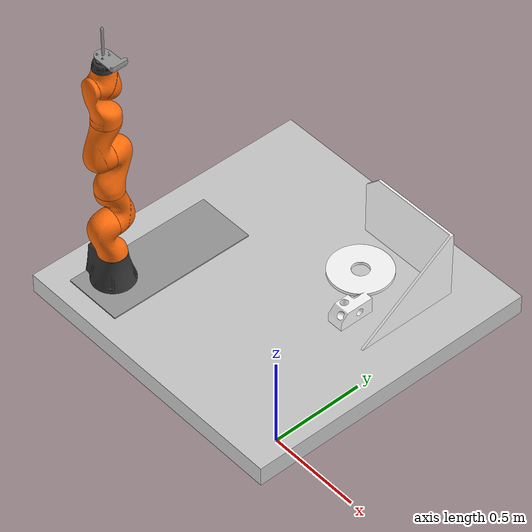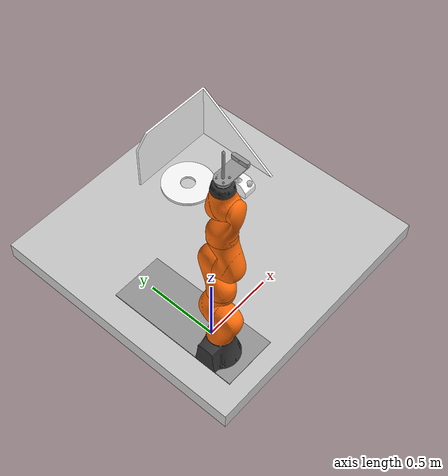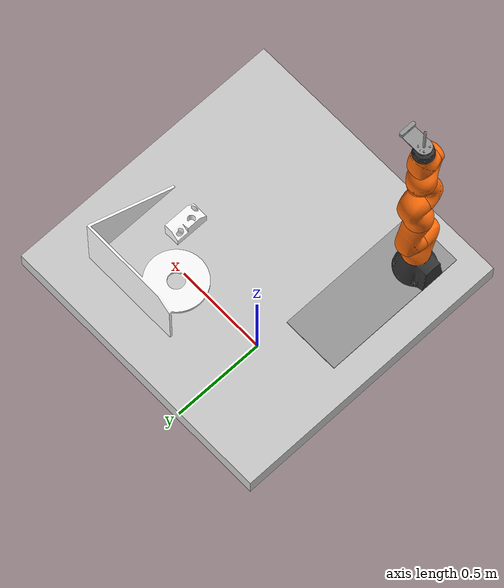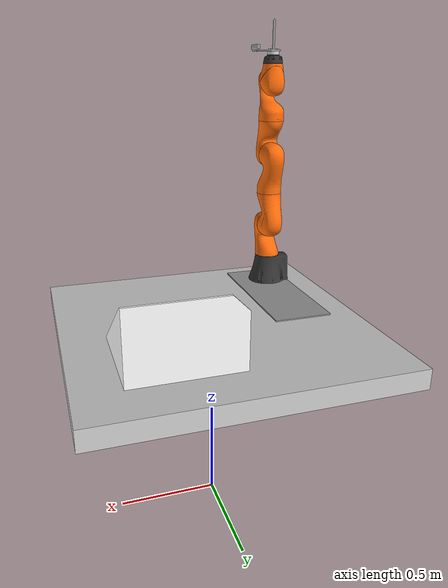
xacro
<?xml version="1.0"?>
<robot name="workcell" xmlns:xacro="http://www.ros.org/wiki/xacro">
  <xacro:include filename="$(find iiwa_description)/urdf/materials.xacro" />
  <xacro:include filename="$(find iiwa_description)/urdf/iiwa7.xacro"/>

  <xacro:arg name="table_size" default="1.5"/>
  <xacro:arg name="hardware_interface" default="PositionJointInterface"/>
  <xacro:arg name="robot_name" default="iiwa"/>

  <xacro:property name="INCH_TO_METER" value="0.0254"/><!--meters/inches-->
  <xacro:property name="pointer_length" value="7.50"/><!--inches-->

  <xacro:property name="IIWA_MF_DIAMETER" value ="0.063"/>
  <xacro:property name="IIWA_MF_LENGTH" value ="0.061"/>

  <xacro:property name="TOOL_FACE_LENGTH" value="0.10668"/>
  <xacro:property name="TOOL_FACE_THICKNESS" value="0.00635"/>
  <xacro:property name="TOOL_FACE_MOUNT_LOC_Z" value="0.1016"/>

  <xacro:property name="BASE_PLATE_THICKNESS" value="0.00635"/>
  <xacro:property name="BASE_PLATE_LENGTH" value="0.762"/>
  <xacro:property name="BASE_PLATE_WIDTH" value="0.3048"/>

  <xacro:property name="CAMERA_WIDTH" value="0.02005"/>

  <!-- ====================== LINKS ========================= -->
  <link name="world"/>

  <!-- table -->
  <link name="table">
    <visual>
      <origin xyz="0 0 -0.05"/>
      <geometry>
        <box size="$(arg table_size) $(arg table_size) 0.1"/>
      </geometry>
      <material name="StainlessSteel">
        <color rgba="0.8 0.8 0.8 0.9"/>
      </material>
    </visual>
    <collision>
      <origin xyz="0 0 -0.05"/>
      <geometry>
        <box size="$(arg table_size) $(arg table_size) 0.1"/>
      </geometry>
    </collision>
  </link>

  <link name="base_plate">
    <visual>
      <origin xyz="${0.5 * BASE_PLATE_WIDTH} ${0.5 * BASE_PLATE_LENGTH} ${BASE_PLATE_THICKNESS}"/>
      <geometry>
        <box size="${BASE_PLATE_WIDTH} ${BASE_PLATE_LENGTH} ${BASE_PLATE_THICKNESS}"/>
      </geometry>
      <material name="StainlessSteel">
        <color rgba="0.6 0.6 0.6 1.0"/>
      </material>
    </visual>
    <collision>
      <origin xyz="${0.5 * BASE_PLATE_WIDTH} ${0.5 * BASE_PLATE_LENGTH} ${BASE_PLATE_THICKNESS}"/>
      <geometry>
        <box size="${BASE_PLATE_WIDTH} ${BASE_PLATE_LENGTH} ${BASE_PLATE_THICKNESS}"/>
      </geometry>
      <material name="StainlessSteel">
        <color rgba="0.6 0.6 0.6 1.0"/>
      </material>
    </collision>
  </link>

  <!-- teach box -->
  <link name="teach_box">
    <visual>
      <origin xyz="0 0 -0.17"/>
      <geometry>
       <mesh filename="package://vpr_support/meshes/teachbox.STL"/>
      </geometry>
      <material name="white">
        <color rgba="1 1 1 1"/>
      </material>
    </visual>
  </link>

  <link name="iiwa_mounting_flange">
    <visual>
      <origin xyz="0 0 ${0.5*IIWA_MF_LENGTH}"/>
      <geometry>
       <cylinder radius="${0.5 * IIWA_MF_DIAMETER}" length="${IIWA_MF_LENGTH}"/>
      </geometry>
      <material name="light_gray">
        <color rgba="0.8 0.8 0.8 1.0"/>
      </material>
    </visual>

    <collision>
      <origin xyz="0 0 ${0.5*IIWA_MF_LENGTH}"/>
      <geometry>
       <cylinder radius="${0.5 * IIWA_MF_DIAMETER}" length="${IIWA_MF_LENGTH}"/>
      </geometry>
      <material name="light_gray">
        <color rgba="0.8 0.8 0.8 1.0"/>
      </material>
    </collision>
  </link>

  <link name="eef_toolface">
    <visual>
      <geometry>
        <mesh filename="package://vpr_support/meshes/TEACH_EEF.STL"/>
      </geometry>
      <material name="grey"/>
    </visual>
    <collision>
      <geometry>
        <mesh filename="package://vpr_support/meshes/TEACH_EEF.STL"/>
      </geometry>
    </collision>
  </link>
  <link name="eef_toolface_mount_location"/>

  <link name="tcp"/>
  <link name="camera_base_link"/>

  <!-- ====================== JOINTS ========================= -->
  <joint name="world_to_table_joint" type="fixed">
    <origin xyz="0 0 1.0"/>
    <parent link="world"/>
    <child link="table"/>
  </joint>

  <joint name="table_to_teach_box" type="floating">
    <parent link="table"/>
    <child link="teach_box"/>
  </joint>

  <joint name="table_to_base_plate" type="fixed">
    <origin xyz="${-0.5*$(arg table_size) + 0.1397 } ${-0.5*$(arg table_size) + 0.09525} 0.0" rpy="0 0 0"/>
     <parent link="table"/>
     <child link="base_plate"/>
  </joint>

  <joint name="iiwa_to_mounting_flange" type="fixed">
    <origin xyz="0.0 0.0 0.0"/>
    <parent link="iiwa_link_7"/>
    <child link="iiwa_mounting_flange"/>
  </joint>

  <joint name="$(arg robot_name)_to_eef_toolface" type="fixed">
    <origin xyz="0.0 0.0 ${IIWA_MF_LENGTH}" rpy="0.0 0.0 ${0.5 * pi}"/>
    <parent link="iiwa_mounting_flange"/>
    <child link="eef_toolface"/>
  </joint>
  <joint name="$(arg robot_name)_to_eef_mount_location" type="fixed">
    <origin xyz="0.035 -0.08 -0.01" rpy="0.0 0.0 0.0"/>
    <parent link="eef_toolface"/>
    <child link="eef_toolface_mount_location"/>
  </joint>

  <joint name="$(arg robot_name)_to_camera_base" type="fixed">
    <origin xyz="0.0 0.0 ${0.5 * CAMERA_WIDTH}" rpy="0.0 0.0 0.0"/>
    <parent link="eef_toolface_mount_location"/>
    <child link="camera_base_link"/>
  </joint>

  <joint name="eef_toolface_to_tcp" type="fixed">
    <origin xyz="0.0 0.0 ${pointer_length * INCH_TO_METER}"/>
    <parent link="eef_toolface"/>
    <child link="tcp"/>
  </joint>

  <!--iiwa-->
  <xacro:iiwa7 hardware_interface="$(arg hardware_interface)"
               robot_name="$(arg robot_name)"
               parent="table">
    <origin xyz="-0.5 -0.5 ${BASE_PLATE_THICKNESS}" rpy="0 0 0"/>
  </xacro:iiwa7>

</robot>

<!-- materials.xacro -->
<robot>

  <material name="Black">
    <color rgba="0.0 0.0 0.0 1.0"/>
  </material>

  <material name="Blue">
    <color rgba="0.0 0.0 0.8 1.0"/>
  </material>

  <material name="Green">
    <color rgba="0.0 0.8 0.0 1.0"/>
  </material>

  <material name="Grey">
    <color rgba="0.2 0.2 0.2 1.0"/>
  </material>

  <material name="Orange">
    <color rgba="${255/255} ${108/255} ${10/255} 1.0"/>
  </material>

  <material name="Brown">
    <color rgba="${222/255} ${207/255} ${195/255} 1.0"/>
  </material>

  <material name="Red">
    <color rgba="0.8 0.0 0.0 1.0"/>
  </material>

  <material name="White">
    <color rgba="1.0 1.0 1.0 1.0"/>
  </material>

</robot>

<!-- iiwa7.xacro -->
<robot xmlns:xacro="http://www.ros.org/wiki/xacro">

  <!-- Import all Gazebo-customization elements, including Gazebo colors -->
  <xacro:include filename="$(find iiwa_description)/urdf/iiwa.gazebo.xacro" />
  <!-- Import Transmissions -->
  <xacro:include filename="$(find iiwa_description)/urdf/iiwa.transmission.xacro" />
  <!-- Include Utilities -->
  <xacro:include filename="$(find iiwa_description)/urdf/utilities.xacro" />

  <!-- some constants -->
  <xacro:property name="safety_controller_k_pos" value="100" />
  <xacro:property name="safety_controller_k_vel" value="2" />
  <xacro:property name="joint_damping" value="0.5" />
  <xacro:property name="max_effort" value="300"/>
  <xacro:property name="max_velocity" value="10"/>

  <xacro:macro name="iiwa7" params="parent hardware_interface robot_name *origin">

    <!--joint between {parent} and link_0-->
    <joint name="${parent}_${robot_name}_joint" type="fixed">
      <xacro:insert_block name="origin"/>
      <parent link="${parent}"/>
      <child link="${robot_name}_link_0"/>
    </joint>

    <link name="${robot_name}_link_0">
      <inertial>
        <origin xyz="-0.1 0 0.07" rpy="0 0 0"/>
        <mass value="5"/>
        <inertia ixx="0.05"  ixy="0"  ixz="0" iyy="0.06" iyz="0" izz="0.03" />
      </inertial>

      <visual>
        <origin xyz="0 0 0" rpy="0 0 0"/>
        <geometry>
          <mesh filename="package://iiwa_description/meshes/iiwa7/visual/link_0.stl"/>
        </geometry>
        <material name="Grey"/>
      </visual>

      <collision>
        <origin xyz="0 0 0" rpy="0 0 0"/>
        <geometry>
          <mesh filename="package://iiwa_description/meshes/iiwa7/collision/link_0.stl"/>
        </geometry>
      </collision>

    </link>

    <!-- joint between link_0 and link_1 -->
    <joint name="${robot_name}_joint_1" type="revolute">
      <parent link="${robot_name}_link_0"/>
      <child link="${robot_name}_link_1"/>
      <origin xyz="0 0 0.15" rpy="0 0 0"/>
      <axis xyz="0 0 1"/>
      <limit lower="${-170 * PI / 180}" upper="${170 * PI / 180}"
             effort="${max_effort}" velocity="${max_velocity}" />
      <safety_controller soft_lower_limit="${-168 * PI / 180}"
                         soft_upper_limit="${168 * PI / 180}"
                         k_position="${safety_controller_k_pos}"
                         k_velocity="${safety_controller_k_vel}"/>
      <dynamics damping="${joint_damping}"/>
    </joint>

    <link name="${robot_name}_link_1">
      <inertial>
        <origin xyz="0 -0.03 0.12" rpy="0 0 0"/>
        <mass value="3.4525"/>
        <inertia ixx="0.02183"  ixy="0"  ixz="0" iyy="0.007703" iyz="-0.003887" izz="0.02083" />
      </inertial>
      <visual>
        <origin xyz="0 0 0.0075" rpy="0 0 0"/>
        <geometry>
          <mesh filename="package://iiwa_description/meshes/iiwa7/visual/link_1.stl"/>
        </geometry>
        <material name="Orange"/>
      </visual>
      <collision>
        <origin xyz="0 0 0.0075" rpy="0 0 0"/>
        <geometry>
          <mesh filename="package://iiwa_description/meshes/iiwa7/collision/link_1.stl"/>
        </geometry>
      </collision>
    </link>

    <joint name="${robot_name}_joint_2" type="revolute">
      <parent link="${robot_name}_link_1"/>
      <child link="${robot_name}_link_2"/>
      <origin xyz="0 0 0.19" rpy="${PI / 2}   0 ${PI}"/>
      <axis xyz="0 0 1"/>
      <limit lower="${-120 * PI / 180}" upper="${120 * PI / 180}"
             effort="${max_effort}" velocity="${max_velocity}" />
      <safety_controller soft_lower_limit="${-118 * PI / 180}"
                         soft_upper_limit="${118 * PI / 180}"
                         k_position="${safety_controller_k_pos}"
                         k_velocity="${safety_controller_k_vel}"/>
      <dynamics damping="${joint_damping}"/>
    </joint>

    <link name="${robot_name}_link_2">
      <inertial>
        <origin xyz="0.0003 0.059 0.042" rpy="0 0 0"/>
        <mass value="3.4821"/>
        <inertia ixx="0.02076"  ixy="0"  ixz="-0.003626" iyy="0.02179" iyz="0" izz="0.00779" />
      </inertial>
      <visual>
        <origin xyz="0 0 0" rpy="0 0 0"/>
        <geometry>
          <mesh filename="package://iiwa_description/meshes/iiwa7/visual/link_2.stl"/>
        </geometry>
        <material name="Orange"/>
      </visual>

      <collision>
        <origin xyz="0 0 0" rpy="0 0 0"/>
        <geometry>
          <mesh filename="package://iiwa_description/meshes/iiwa7/collision/link_2.stl"/>
        </geometry>
      </collision>
    </link>

    <joint name="${robot_name}_joint_3" type="revolute">
      <parent link="${robot_name}_link_2"/>
      <child link="${robot_name}_link_3"/>
      <origin xyz="0 0.21 0" rpy="${PI / 2} 0 ${PI}"/>
      <axis xyz="0 0 1"/>
      <limit lower="${-170 * PI / 180}" upper="${170 * PI / 180}"
             effort="${max_effort}" velocity="${max_velocity}" />
      <safety_controller soft_lower_limit="${-168 * PI / 180}"
                         soft_upper_limit="${168 * PI / 180}"
                         k_position="${safety_controller_k_pos}"
                         k_velocity="${safety_controller_k_vel}"/>
      <dynamics damping="${joint_damping}"/>
    </joint>

    <link name="${robot_name}_link_3">
      <inertial>
        <origin xyz="0 0.03 0.13" rpy="0 0 0"/>
        <mass value="4.05623"/>
        <inertia ixx="0.03204"  ixy="0"  ixz="0" iyy="0.00972" iyz="0.006227" izz="0.03042" />
      </inertial>

      <visual>
        <origin xyz="0 0 -0.026" rpy="0 0 0"/>
        <geometry>
          <mesh filename="package://iiwa_description/meshes/iiwa7/visual/link_3.stl"/>
        </geometry>
        <material name="Orange"/>
      </visual>

      <collision>
        <origin xyz="0 0 -0.026" rpy="0 0 0"/>
        <geometry>
          <mesh filename="package://iiwa_description/meshes/iiwa7/collision/link_3.stl"/>
        </geometry>
      </collision>

    </link>

    <joint name="${robot_name}_joint_4" type="revolute">
      <parent link="${robot_name}_link_3"/>
      <child link="${robot_name}_link_4"/>
      <origin xyz="0 0 0.19" rpy="${PI / 2} 0 0"/>
      <axis xyz="0 0 1"/>
      <limit lower="${-120 * PI / 180}" upper="${120 * PI / 180}"
             effort="${max_effort}" velocity="${max_velocity}" />
      <safety_controller soft_lower_limit="${-118 * PI / 180}"
                         soft_upper_limit="${118 * PI / 180}"
                         k_position="${safety_controller_k_pos}"
                         k_velocity="${safety_controller_k_vel}"/>
      <dynamics damping="${joint_damping}"/>
    </joint>

    <link name="${robot_name}_link_4">
      <inertial>
        <origin xyz="0 0.067 0.034" rpy="0 0 0"/>
        <mass value="3.4822"/>
        <inertia ixx="0.02178"  ixy="0"  ixz="0" iyy="0.02075" iyz="-0.003625" izz="0.007785" />
      </inertial>

      <visual>
        <origin xyz="0 0 0" rpy="0 0 0"/>
        <geometry>
          <mesh filename="package://iiwa_description/meshes/iiwa7/visual/link_4.stl"/>
        </geometry>
        <material name="Orange"/>
      </visual>

      <collision>
        <origin xyz="0 0 0" rpy="0 0 0"/>
        <geometry>
          <mesh filename="package://iiwa_description/meshes/iiwa7/collision/link_4.stl"/>
        </geometry>
      </collision>
    </link>

    <joint name="${robot_name}_joint_5" type="revolute">
      <parent link="${robot_name}_link_4"/>
      <child link="${robot_name}_link_5"/>
      <origin xyz="0 0.21 0" rpy="${-PI / 2} ${PI} 0"/>
      <axis xyz="0 0 1"/>
      <limit lower="${-170 * PI / 180}" upper="${170 * PI / 180}"
             effort="${max_effort}" velocity="${max_velocity}" />
      <safety_controller soft_lower_limit="${-168 * PI / 180}"
                         soft_upper_limit="${168 * PI / 180}"
                         k_position="${safety_controller_k_pos}"
                         k_velocity="${safety_controller_k_vel}"/>
      <dynamics damping="${joint_damping}"/>
    </joint>

    <link name="${robot_name}_link_5">
      <inertial>
        <origin xyz="0.0001 0.021 0.076" rpy="0 0 0"/>
        <mass value="2.1633"/>
        <inertia ixx="0.01287"  ixy="0"  ixz="0" iyy="0.005708" iyz="-0.003946" izz="0.01112" />
      </inertial>

      <visual>
        <origin xyz="0 0 -0.026" rpy="0 0 0"/>
        <geometry>
          <mesh filename="package://iiwa_description/meshes/iiwa7/visual/link_5.stl"/>
        </geometry>
        <material name="Orange"/>
      </visual>

      <collision>
        <origin xyz="0 0 -0.026" rpy="0 0 0"/>
        <geometry>
          <mesh filename="package://iiwa_description/meshes/iiwa7/collision/link_5.stl"/>
        </geometry>
      </collision>
    </link>

    <joint name="${robot_name}_joint_6" type="revolute">
      <parent link="${robot_name}_link_5"/>
      <child link="${robot_name}_link_6"/>
      <origin xyz="0 0.06070 0.19" rpy="${PI / 2} 0 0"/>
      <axis xyz="0 0 1"/>
      <limit lower="${-120 * PI / 180}" upper="${120 * PI / 180}"
             effort="${max_effort}" velocity="${max_velocity}" />
      <safety_controller soft_lower_limit="${-118 * PI / 180}"
                         soft_upper_limit="${118 * PI / 180}"
                         k_position="${safety_controller_k_pos}"
                         k_velocity="${safety_controller_k_vel}"/>
      <dynamics damping="${joint_damping}"/>
    </joint>

    <link name="${robot_name}_link_6">
      <inertial>
        <origin xyz="0 0.0006 0.0004" rpy="0 0 0"/>
        <mass value="2.3466"/>
        <inertia ixx="0.006509"  ixy="0"  ixz="0" iyy="0.006259" iyz="0.00031891" izz="0.004527" />
      </inertial>

      <visual>
        <origin xyz="0 0 0" rpy="0 0 0"/>
        <geometry>
          <mesh filename="package://iiwa_description/meshes/iiwa7/visual/link_6.stl"/>
        </geometry>
        <material name="Orange"/>
      </visual>

      <collision>
        <origin xyz="0 0 0" rpy="0 0 0"/>
        <geometry>
          <mesh filename="package://iiwa_description/meshes/iiwa7/collision/link_6.stl"/>
        </geometry>
      </collision>
    </link>

    <joint name="${robot_name}_joint_7" type="revolute">
      <parent link="${robot_name}_link_6"/>
      <child link="${robot_name}_link_7"/>
      <origin xyz="0 0.081 0.06070" rpy="${- PI / 2} ${PI} 0"/>
      <axis xyz="0 0 1"/>
      <limit lower="${-175 * PI / 180}" upper="${175 * PI / 180}"
             effort="${max_effort}" velocity="${max_velocity}" />
      <safety_controller soft_lower_limit="${-173 * PI / 180}"
                         soft_upper_limit="${173 * PI / 180}"
                         k_position="${safety_controller_k_pos}"
                         k_velocity="${safety_controller_k_vel}"/>
      <dynamics damping="${joint_damping}"/>
    </joint>

    <link name="${robot_name}_link_7">
      <inertial>
        <origin xyz="0 0 0.02" rpy="0 0 0"/>
        <mass value="3.129"/>
        <inertia ixx="0.01464"  ixy="0.0005912"  ixz="0" iyy="0.01465" iyz="0" izz="0.002872" />
      </inertial>

      <visual>
        <origin xyz="0 0 -0.0005" rpy="0 0 0"/>
        <geometry>
          <mesh filename="package://iiwa_description/meshes/iiwa7/visual/link_7.stl"/>
        </geometry>
        <material name="Grey"/>
      </visual>

      <collision>
        <origin xyz="0 0 -0.0005" rpy="0 0 0"/>
        <geometry>
          <mesh filename="package://iiwa_description/meshes/iiwa7/collision/link_7.stl"/>
        </geometry>
      </collision>
    </link>

    <joint name="${robot_name}_joint_ee" type="fixed">
      <parent link="${robot_name}_link_7"/>
      <child link="${robot_name}_link_ee"/>
      <origin xyz="0 0 0.045" rpy="0 0 0"/>
    </joint>

    <link name="${robot_name}_link_ee">
    </link>

    <!--Extensions -->
    <xacro:iiwa_gazebo robot_name="${robot_name}" />
    <xacro:iiwa_transmission hardware_interface="${hardware_interface}"/>

  </xacro:macro>

</robot>

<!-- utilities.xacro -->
<robot name="iiwa" xmlns:xacro="http://www.ros.org/wiki/xacro">

  <xacro:property name="PI" value="3.1415926535897931"/>

<!-- The following macros are adapted from the LWR 4 definitions of the RCPRG - https://github.com/RCPRG-ros-pkg/lwr_robot -->
  <!--Little helper macros to define the inertia matrix needed for links.-->
  <!--Cuboid-->
  <xacro:macro name="cuboid_inertia" params="width height length mass">
    <inertia ixx="${mass * (height * height + length * length) / 12)}"
             iyy="${mass * (width * width + length * length) / 12)}"
             izz="${mass * (width * width + height * height) / 12)}"
             ixy="0" iyz="0" ixz="0"/>
  </xacro:macro>

  <!--Cylinder: length is along the y-axis! -->
  <xacro:macro name="cylinder_inertia" params="radius length mass">
    <inertia ixx="${mass * (3 * radius * radius + length * length) / 12)}"
             iyy="${mass * radius* radius / 2)}"
             izz="${mass * (3 * radius * radius + length * length) / 12)}"
             ixy="0" iyz="0" ixz="0"/>
  </xacro:macro>

</robot>
